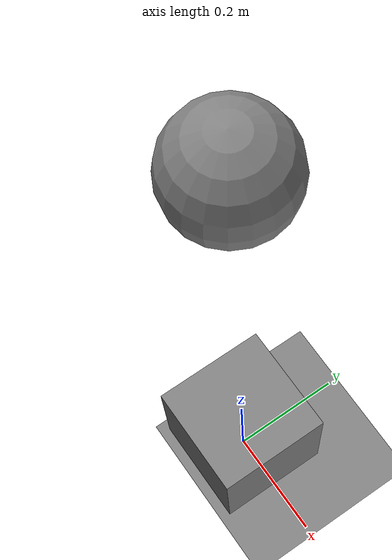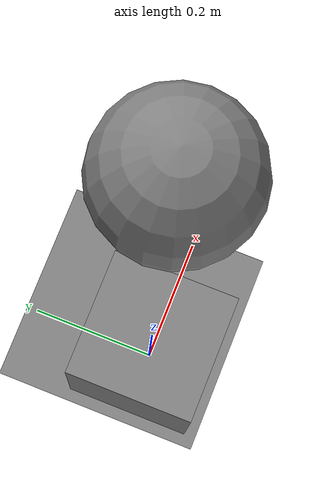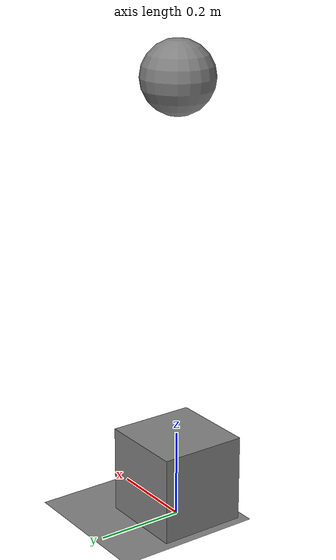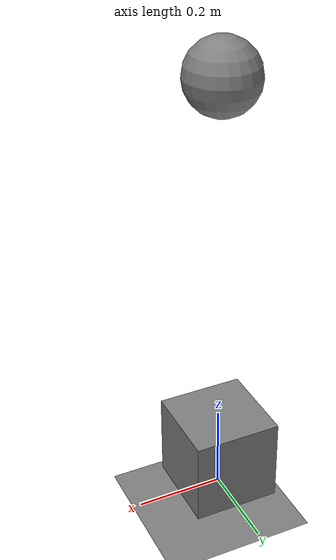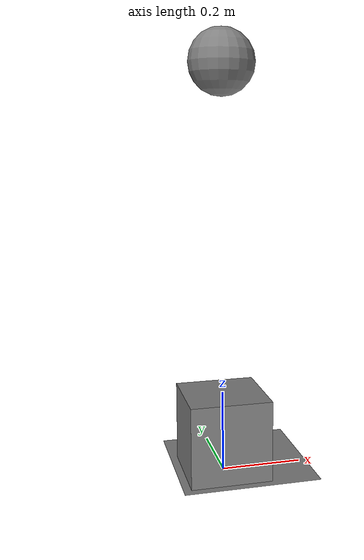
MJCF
<mujoco model="wake_contact">
  <option gravity="0 0 -9.81" timestep="0.002" sleep_tolerance="0.1">
    <flag sleep="enable"/>
  </option>
  <worldbody>
    <geom type="plane" size="5 5 0.1" solref="0.005 1.5"/>
    <body name="box" pos="0 0 0.1" sleep="init">
      <freejoint/>
      <geom type="box" size="0.1 0.1 0.1" mass="2.0" solref="0.005 1.5"/>
    </body>
    <body name="ball" pos="0 0 1.0">
      <freejoint/>
      <geom type="sphere" size="0.08" mass="0.5" solref="0.005 1.5"/>
    </body>
  </worldbody>
</mujoco>
